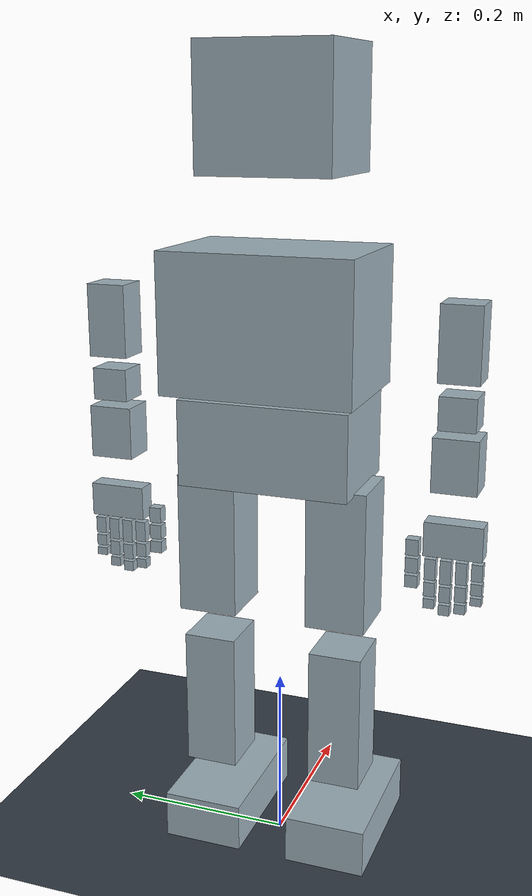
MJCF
<mujoco model="Irona_914_dynamics_check"><compiler angle="radian" inertiafromgeom="false" balanceinertia="false" /><option timestep="0.001" gravity="0 0 -9.81" integrator="implicitfast" iterations="100" tolerance="1e-10" /><worldbody><geom name="floor" type="plane" size="10 10 .1" friction=".8 .01 .001" rgba=".2 .23 .27 1" /><light pos="2 -2 3" dir="-1 1 -2" directional="true" /><camera name="overview" pos="1.6 -2 1.1" xyaxes=".78 .625 0 -.13 .16 .976" /><body name="pelvis" pos="0 0 0.48"><freejoint name="floating_base" /><inertial pos="0 0 0.01" mass="2.0" diaginertia="0.00752083333 0.00410833333 0.00862083333" /><geom name="pelvis_collision" type="box" pos="0 0 0.01" size="0.0625 0.095 0.0475" friction=".8 .01 .001" rgba=".62 .69 .73 1" condim="4" solref=".006 1" solimp=".95 .99 .001" /><body name="waist_yaw_link" pos="0 0 0.055"><joint name="waist_yaw" type="hinge" axis="0 0 1" range="-0.785398163 0.785398163" damping="0" armature="0" /><inertial pos="0 0 0" mass="0.12" diaginertia="2.225e-05 2.225e-05 3.2e-05" /><body name="torso" pos="0 0 0.01"><joint name="waist_pitch" type="hinge" axis="0 1 0" range="-0.34906585 0.436332313" damping="0" armature="0" /><inertial pos="-0.012 0 0.076" mass="3.6" diaginertia="0.01998 0.0130575 0.0195375" /><geom name="torso_collision" type="box" pos="-0.012 0 0.076" size="0.0725 0.105 0.075" friction=".8 .01 .001" rgba=".62 .69 .73 1" condim="4" solref=".006 1" solimp=".95 .99 .001" /><body name="neck_yaw_link" pos="0 0 0.199"><joint name="neck_yaw" type="hinge" axis="0 0 1" range="-1.3962634 1.3962634" damping="0" armature="0" /><inertial pos="0 0 0" mass="0.1" diaginertia="1.54166667e-05 1.54166667e-05 2.04166667e-05" /><body name="head" pos="0 0 0.02"><joint name="neck_pitch" type="hinge" axis="0 1 0" range="-0.523598776 0.610865238" damping="0" armature="0" /><inertial pos="0.01 0 0.069" mass="0.91" diaginertia="0.00287597917 0.00260290333 0.00291571583" /><geom name="head_collision" type="box" pos="0.01 0 0.069" size="0.066 0.0725 0.065" friction=".8 .01 .001" rgba=".62 .69 .73 1" condim="4" solref=".006 1" solimp=".95 .99 .001" /></body></body><body name="left_shoulder_pitch_link" pos="0 0.172 0.158"><joint name="left_shoulder_pitch" type="hinge" axis="0 1 0" range="-1.91986218 1.65806279" damping="0" armature="0" /><inertial pos="0 0 -0.012" mass="0.2" diaginertia="6.83333333e-05 7.10666667e-05 5.60666667e-05" /><body name="left_shoulder_roll_link" pos="0 0.021 -0.023"><joint name="left_shoulder_roll" type="hinge" axis="1 0 0" range="-1.3962634 1.3962634" damping="0" armature="0" /><inertial pos="0 0 -0.006" mass="0.2" diaginertia="4.81333333e-05 4.94166667e-05 4.94166667e-05" /><body name="left_upper_arm" pos="0 0.004 -0.023"><joint name="left_shoulder_yaw" type="hinge" axis="0 0 1" range="-1.74532925 1.74532925" damping="0" armature="0" /><inertial pos="0 0 -0.049" mass="0.33" diaginertia="0.0002336675 0.0002244275 9.724e-05" /><geom name="left_upper_arm_collision" type="box" pos="0 0 -0.049" size="0.02 0.022 0.0405" friction=".8 .01 .001" rgba=".62 .69 .73 1" condim="4" solref=".006 1" solimp=".95 .99 .001" /><body name="left_forearm" pos="0 0 -0.104"><joint name="left_elbow" type="hinge" axis="0 1 0" range="-2.35619449 0" damping="0" armature="0" /><inertial pos="0 0 -0.017" mass="0.22" diaginertia="5.30933333e-05 4.88583333e-05 5.44316667e-05" /><geom name="left_forearm_collision" type="box" pos="0 0 -0.017" size="0.0185 0.02 0.018" friction=".8 .01 .001" rgba=".62 .69 .73 1" condim="4" solref=".006 1" solimp=".95 .99 .001" /><body name="left_forearm_roll_link" pos="0 0 -0.037"><joint name="left_forearm_roll" type="hinge" axis="0 0 1" range="-1.91986218 1.91986218" damping="0" armature="0" /><inertial pos="0 0 -0.035" mass="0.24" diaginertia="0.00011764 0.00010324 8.164e-05" /><geom name="left_forearm_roll_link_collision" type="box" pos="0 0 -0.035" size="0.0205 0.0245 0.0295" friction=".8 .01 .001" rgba=".62 .69 .73 1" condim="4" solref=".006 1" solimp=".95 .99 .001" /><body name="left_wrist_pitch_link" pos="0 0 -0.079"><joint name="left_wrist_pitch" type="hinge" axis="0 1 0" range="-1.13446401 1.13446401" damping="0" armature="0" /><inertial pos="0 0 -0.008" mass="0.1" diaginertia="1.48416667e-05 1.37416667e-05 1.81666667e-05" /><body name="left_hand" pos="0 0 -0.02"><joint name="left_wrist_roll" type="hinge" axis="1 0 0" range="-0.610865238 0.610865238" damping="0" armature="0" /><inertial pos="0 0 -0.021" mass="0.16" diaginertia="7.38666667e-05 2.63066667e-05 6.16666667e-05" /><geom name="left_hand_collision" type="box" pos="0 0 -0.021" size="0.0115 0.032 0.019" friction=".8 .01 .001" rgba=".62 .69 .73 1" condim="4" solref=".006 1" solimp=".95 .99 .001" /><body name="left_index_mcp_link" pos="0 -0.025 -0.044"><joint name="left_index_mcp" type="hinge" axis="0 1 0" range="-1.48352986 0.174532925" damping="0" armature="0" /><inertial pos="0 0 -0.0135" mass="0.009" diaginertia="5.4e-07 5.2275e-07 1.9875e-07" /><geom name="left_index_mcp_link_collision" type="box" pos="0 0 -0.0135" size="0.0055 0.006 0.012" friction=".8 .01 .001" rgba=".62 .69 .73 1" condim="4" solref=".006 1" solimp=".95 .99 .001" /><body name="left_index_pip_link" pos="0 0 -0.027"><joint name="left_index_pip" type="hinge" axis="0 1 0" range="-1.74532925 0" damping="0" armature="0" /><inertial pos="0 0 -0.0095" mass="0.006" diaginertia="2e-07 1.885e-07 1.325e-07" /><geom name="left_index_pip_link_collision" type="box" pos="0 0 -0.0095" size="0.0055 0.006 0.008" friction=".8 .01 .001" rgba=".62 .69 .73 1" condim="4" solref=".006 1" solimp=".95 .99 .001" /><body name="left_index_dip_link" pos="0 0 -0.019"><joint name="left_index_dip" type="hinge" axis="0 1 0" range="-1.30899694 0" damping="0" armature="0" /><inertial pos="0 0 -0.007" mass="0.004" diaginertia="8.83333333e-08 8.06666667e-08 8.83333333e-08" /><geom name="left_index_dip_link_collision" type="box" pos="0 0 -0.007" size="0.0055 0.006 0.0055" friction=".8 .01 .001" rgba=".62 .69 .73 1" condim="4" solref=".006 1" solimp=".95 .99 .001" /></body></body></body><body name="left_middle_mcp_link" pos="0 -0.008 -0.044"><joint name="left_middle_mcp" type="hinge" axis="0 1 0" range="-1.48352986 0.174532925" damping="0" armature="0" /><inertial pos="0 0 -0.015" mass="0.009" diaginertia="6.5475e-07 6.375e-07 1.9875e-07" /><geom name="left_middle_mcp_link_collision" type="box" pos="0 0 -0.015" size="0.0055 0.006 0.0135" friction=".8 .01 .001" rgba=".62 .69 .73 1" condim="4" solref=".006 1" solimp=".95 .99 .001" /><body name="left_middle_pip_link" pos="0 0 -0.03"><joint name="left_middle_pip" type="hinge" axis="0 1 0" range="-1.74532925 0" damping="0" armature="0" /><inertial pos="0 0 -0.0105" mass="0.006" diaginertia="2.34e-07 2.225e-07 1.325e-07" /><geom name="left_middle_pip_link_collision" type="box" pos="0 0 -0.0105" size="0.0055 0.006 0.009" friction=".8 .01 .001" rgba=".62 .69 .73 1" condim="4" solref=".006 1" solimp=".95 .99 .001" /><body name="left_middle_dip_link" pos="0 0 -0.021"><joint name="left_middle_dip" type="hinge" axis="0 1 0" range="-1.30899694 0" damping="0" armature="0" /><inertial pos="0 0 -0.0075" mass="0.004" diaginertia="9.6e-08 8.83333333e-08 8.83333333e-08" /><geom name="left_middle_dip_link_collision" type="box" pos="0 0 -0.0075" size="0.0055 0.006 0.006" friction=".8 .01 .001" rgba=".62 .69 .73 1" condim="4" solref=".006 1" solimp=".95 .99 .001" /></body></body></body><body name="left_ring_mcp_link" pos="0 0.009 -0.044"><joint name="left_ring_mcp" type="hinge" axis="0 1 0" range="-1.48352986 0.174532925" damping="0" armature="0" /><inertial pos="0 0 -0.014" mass="0.009" diaginertia="5.7675e-07 5.595e-07 1.9875e-07" /><geom name="left_ring_mcp_link_collision" type="box" pos="0 0 -0.014" size="0.0055 0.006 0.0125" friction=".8 .01 .001" rgba=".62 .69 .73 1" condim="4" solref=".006 1" solimp=".95 .99 .001" /><body name="left_ring_pip_link" pos="0 0 -0.028"><joint name="left_ring_pip" type="hinge" axis="0 1 0" range="-1.74532925 0" damping="0" armature="0" /><inertial pos="0 0 -0.01" mass="0.006" diaginertia="2.165e-07 2.05e-07 1.325e-07" /><geom name="left_ring_pip_link_collision" type="box" pos="0 0 -0.01" size="0.0055 0.006 0.0085" friction=".8 .01 .001" rgba=".62 .69 .73 1" condim="4" solref=".006 1" solimp=".95 .99 .001" /><body name="left_ring_dip_link" pos="0 0 -0.02"><joint name="left_ring_dip" type="hinge" axis="0 1 0" range="-1.30899694 0" damping="0" armature="0" /><inertial pos="0 0 -0.007" mass="0.004" diaginertia="8.83333333e-08 8.06666667e-08 8.83333333e-08" /><geom name="left_ring_dip_link_collision" type="box" pos="0 0 -0.007" size="0.0055 0.006 0.0055" friction=".8 .01 .001" rgba=".62 .69 .73 1" condim="4" solref=".006 1" solimp=".95 .99 .001" /></body></body></body><body name="left_little_mcp_link" pos="0 0.026 -0.044"><joint name="left_little_mcp" type="hinge" axis="0 1 0" range="-1.48352986 0.174532925" damping="0" armature="0" /><inertial pos="0 0 -0.011" mass="0.009" diaginertia="3.7875e-07 3.615e-07 1.9875e-07" /><geom name="left_little_mcp_link_collision" type="box" pos="0 0 -0.011" size="0.0055 0.006 0.0095" friction=".8 .01 .001" rgba=".62 .69 .73 1" condim="4" solref=".006 1" solimp=".95 .99 .001" /><body name="left_little_pip_link" pos="0 0 -0.022"><joint name="left_little_pip" type="hinge" axis="0 1 0" range="-1.74532925 0" damping="0" armature="0" /><inertial pos="0 0 -0.008" mass="0.006" diaginertia="1.565e-07 1.45e-07 1.325e-07" /><geom name="left_little_pip_link_collision" type="box" pos="0 0 -0.008" size="0.0055 0.006 0.0065" friction=".8 .01 .001" rgba=".62 .69 .73 1" condim="4" solref=".006 1" solimp=".95 .99 .001" /><body name="left_little_dip_link" pos="0 0 -0.016"><joint name="left_little_dip" type="hinge" axis="0 1 0" range="-1.30899694 0" damping="0" armature="0" /><inertial pos="0 0 -0.006" mass="0.004" diaginertia="7.5e-08 6.73333333e-08 8.83333333e-08" /><geom name="left_little_dip_link_collision" type="box" pos="0 0 -0.006" size="0.0055 0.006 0.0045" friction=".8 .01 .001" rgba=".62 .69 .73 1" condim="4" solref=".006 1" solimp=".95 .99 .001" /></body></body></body><body name="left_thumb_cmc_link" pos="0 -0.045 -0.021"><joint name="left_thumb_opposition" type="hinge" axis="0 0 1" range="-1.13446401 1.13446401" damping="0" armature="0" /><inertial pos="0 0 0" mass="0.009" diaginertia="2.955e-07 3.1875e-07 3.6075e-07" /><body name="left_thumb_spread_link" pos="0 0 -0.003"><joint name="left_thumb_spread" type="hinge" axis="1 0 0" range="-0.698131701 0.698131701" damping="0" armature="0" /><inertial pos="0 0 -0.0105" mass="0.01" diaginertia="4.33333333e-07 4.10833333e-07 3.04166667e-07" /><geom name="left_thumb_spread_link_collision" type="box" pos="0 0 -0.0105" size="0.0065 0.007 0.009" friction=".8 .01 .001" rgba=".62 .69 .73 1" condim="4" solref=".006 1" solimp=".95 .99 .001" /><body name="left_thumb_mcp_link" pos="0 0 -0.021"><joint name="left_thumb_mcp" type="hinge" axis="0 1 0" range="-1.30899694 0.174532925" damping="0" armature="0" /><inertial pos="0 0 -0.01" mass="0.008" diaginertia="3.23333333e-07 3.05333333e-07 2.43333333e-07" /><geom name="left_thumb_mcp_link_collision" type="box" pos="0 0 -0.01" size="0.0065 0.007 0.0085" friction=".8 .01 .001" rgba=".62 .69 .73 1" condim="4" solref=".006 1" solimp=".95 .99 .001" /><body name="left_thumb_ip_link" pos="0 0 -0.02"><joint name="left_thumb_ip" type="hinge" axis="0 1 0" range="-1.3962634 0" damping="0" armature="0" /><inertial pos="0 0 -0.0085" mass="0.005" diaginertia="1.63333333e-07 1.52083333e-07 1.52083333e-07" /><geom name="left_thumb_ip_link_collision" type="box" pos="0 0 -0.0085" size="0.0065 0.007 0.007" friction=".8 .01 .001" rgba=".62 .69 .73 1" condim="4" solref=".006 1" solimp=".95 .99 .001" /></body></body></body></body></body></body></body></body></body></body></body><body name="right_shoulder_pitch_link" pos="0 -0.172 0.158"><joint name="right_shoulder_pitch" type="hinge" axis="0 1 0" range="-1.91986218 1.65806279" damping="0" armature="0" /><inertial pos="0 0 -0.012" mass="0.2" diaginertia="6.83333333e-05 7.10666667e-05 5.60666667e-05" /><body name="right_shoulder_roll_link" pos="0 -0.021 -0.023"><joint name="right_shoulder_roll" type="hinge" axis="1 0 0" range="-1.3962634 1.3962634" damping="0" armature="0" /><inertial pos="0 0 -0.006" mass="0.2" diaginertia="4.81333333e-05 4.94166667e-05 4.94166667e-05" /><body name="right_upper_arm" pos="0 -0.004 -0.023"><joint name="right_shoulder_yaw" type="hinge" axis="0 0 1" range="-1.74532925 1.74532925" damping="0" armature="0" /><inertial pos="0 0 -0.049" mass="0.33" diaginertia="0.0002336675 0.0002244275 9.724e-05" /><geom name="right_upper_arm_collision" type="box" pos="0 0 -0.049" size="0.02 0.022 0.0405" friction=".8 .01 .001" rgba=".62 .69 .73 1" condim="4" solref=".006 1" solimp=".95 .99 .001" /><body name="right_forearm" pos="0 0 -0.104"><joint name="right_elbow" type="hinge" axis="0 1 0" range="-2.35619449 0" damping="0" armature="0" /><inertial pos="0 0 -0.017" mass="0.22" diaginertia="5.30933333e-05 4.88583333e-05 5.44316667e-05" /><geom name="right_forearm_collision" type="box" pos="0 0 -0.017" size="0.0185 0.02 0.018" friction=".8 .01 .001" rgba=".62 .69 .73 1" condim="4" solref=".006 1" solimp=".95 .99 .001" /><body name="right_forearm_roll_link" pos="0 0 -0.037"><joint name="right_forearm_roll" type="hinge" axis="0 0 1" range="-1.91986218 1.91986218" damping="0" armature="0" /><inertial pos="0 0 -0.035" mass="0.24" diaginertia="0.00011764 0.00010324 8.164e-05" /><geom name="right_forearm_roll_link_collision" type="box" pos="0 0 -0.035" size="0.0205 0.0245 0.0295" friction=".8 .01 .001" rgba=".62 .69 .73 1" condim="4" solref=".006 1" solimp=".95 .99 .001" /><body name="right_wrist_pitch_link" pos="0 0 -0.079"><joint name="right_wrist_pitch" type="hinge" axis="0 1 0" range="-1.13446401 1.13446401" damping="0" armature="0" /><inertial pos="0 0 -0.008" mass="0.1" diaginertia="1.48416667e-05 1.37416667e-05 1.81666667e-05" /><body name="right_hand" pos="0 0 -0.02"><joint name="right_wrist_roll" type="hinge" axis="1 0 0" range="-0.610865238 0.610865238" damping="0" armature="0" /><inertial pos="0 0 -0.021" mass="0.16" diaginertia="7.38666667e-05 2.63066667e-05 6.16666667e-05" /><geom name="right_hand_collision" type="box" pos="0 0 -0.021" size="0.0115 0.032 0.019" friction=".8 .01 .001" rgba=".62 .69 .73 1" condim="4" solref=".006 1" solimp=".95 .99 .001" /><body name="right_index_mcp_link" pos="0 0.025 -0.044"><joint name="right_index_mcp" type="hinge" axis="0 1 0" range="-1.48352986 0.174532925" damping="0" armature="0" /><inertial pos="0 0 -0.0135" mass="0.009" diaginertia="5.4e-07 5.2275e-07 1.9875e-07" /><geom name="right_index_mcp_link_collision" type="box" pos="0 0 -0.0135" size="0.0055 0.006 0.012" friction=".8 .01 .001" rgba=".62 .69 .73 1" condim="4" solref=".006 1" solimp=".95 .99 .001" /><body name="right_index_pip_link" pos="0 0 -0.027"><joint name="right_index_pip" type="hinge" axis="0 1 0" range="-1.74532925 0" damping="0" armature="0" /><inertial pos="0 0 -0.0095" mass="0.006" diaginertia="2e-07 1.885e-07 1.325e-07" /><geom name="right_index_pip_link_collision" type="box" pos="0 0 -0.0095" size="0.0055 0.006 0.008" friction=".8 .01 .001" rgba=".62 .69 .73 1" condim="4" solref=".006 1" solimp=".95 .99 .001" /><body name="right_index_dip_link" pos="0 0 -0.019"><joint name="right_index_dip" type="hinge" axis="0 1 0" range="-1.30899694 0" damping="0" armature="0" /><inertial pos="0 0 -0.007" mass="0.004" diaginertia="8.83333333e-08 8.06666667e-08 8.83333333e-08" /><geom name="right_index_dip_link_collision" type="box" pos="0 0 -0.007" size="0.0055 0.006 0.0055" friction=".8 .01 .001" rgba=".62 .69 .73 1" condim="4" solref=".006 1" solimp=".95 .99 .001" /></body></body></body><body name="right_middle_mcp_link" pos="0 0.008 -0.044"><joint name="right_middle_mcp" type="hinge" axis="0 1 0" range="-1.48352986 0.174532925" damping="0" armature="0" /><inertial pos="0 0 -0.015" mass="0.009" diaginertia="6.5475e-07 6.375e-07 1.9875e-07" /><geom name="right_middle_mcp_link_collision" type="box" pos="0 0 -0.015" size="0.0055 0.006 0.0135" friction=".8 .01 .001" rgba=".62 .69 .73 1" condim="4" solref=".006 1" solimp=".95 .99 .001" /><body name="right_middle_pip_link" pos="0 0 -0.03"><joint name="right_middle_pip" type="hinge" axis="0 1 0" range="-1.74532925 0" damping="0" armature="0" /><inertial pos="0 0 -0.0105" mass="0.006" diaginertia="2.34e-07 2.225e-07 1.325e-07" /><geom name="right_middle_pip_link_collision" type="box" pos="0 0 -0.0105" size="0.0055 0.006 0.009" friction=".8 .01 .001" rgba=".62 .69 .73 1" condim="4" solref=".006 1" solimp=".95 .99 .001" /><body name="right_middle_dip_link" pos="0 0 -0.021"><joint name="right_middle_dip" type="hinge" axis="0 1 0" range="-1.30899694 0" damping="0" armature="0" /><inertial pos="0 0 -0.0075" mass="0.004" diaginertia="9.6e-08 8.83333333e-08 8.83333333e-08" /><geom name="right_middle_dip_link_collision" type="box" pos="0 0 -0.0075" size="0.0055 0.006 0.006" friction=".8 .01 .001" rgba=".62 .69 .73 1" condim="4" solref=".006 1" solimp=".95 .99 .001" /></body></body></body><body name="right_ring_mcp_link" pos="0 -0.009 -0.044"><joint name="right_ring_mcp" type="hinge" axis="0 1 0" range="-1.48352986 0.174532925" damping="0" armature="0" /><inertial pos="0 0 -0.014" mass="0.009" diaginertia="5.7675e-07 5.595e-07 1.9875e-07" /><geom name="right_ring_mcp_link_collision" type="box" pos="0 0 -0.014" size="0.0055 0.006 0.0125" friction=".8 .01 .001" rgba=".62 .69 .73 1" condim="4" solref=".006 1" solimp=".95 .99 .001" /><body name="right_ring_pip_link" pos="0 0 -0.028"><joint name="right_ring_pip" type="hinge" axis="0 1 0" range="-1.74532925 0" damping="0" armature="0" /><inertial pos="0 0 -0.01" mass="0.006" diaginertia="2.165e-07 2.05e-07 1.325e-07" /><geom name="right_ring_pip_link_collision" type="box" pos="0 0 -0.01" size="0.0055 0.006 0.0085" friction=".8 .01 .001" rgba=".62 .69 .73 1" condim="4" solref=".006 1" solimp=".95 .99 .001" /><body name="right_ring_dip_link" pos="0 0 -0.02"><joint name="right_ring_dip" type="hinge" axis="0 1 0" range="-1.30899694 0" damping="0" armature="0" /><inertial pos="0 0 -0.007" mass="0.004" diaginertia="8.83333333e-08 8.06666667e-08 8.83333333e-08" /><geom name="right_ring_dip_link_collision" type="box" pos="0 0 -0.007" size="0.0055 0.006 0.0055" friction=".8 .01 .001" rgba=".62 .69 .73 1" condim="4" solref=".006 1" solimp=".95 .99 .001" /></body></body></body><body name="right_little_mcp_link" pos="0 -0.026 -0.044"><joint name="right_little_mcp" type="hinge" axis="0 1 0" range="-1.48352986 0.174532925" damping="0" armature="0" /><inertial pos="0 0 -0.011" mass="0.009" diaginertia="3.7875e-07 3.615e-07 1.9875e-07" /><geom name="right_little_mcp_link_collision" type="box" pos="0 0 -0.011" size="0.0055 0.006 0.0095" friction=".8 .01 .001" rgba=".62 .69 .73 1" condim="4" solref=".006 1" solimp=".95 .99 .001" /><body name="right_little_pip_link" pos="0 0 -0.022"><joint name="right_little_pip" type="hinge" axis="0 1 0" range="-1.74532925 0" damping="0" armature="0" /><inertial pos="0 0 -0.008" mass="0.006" diaginertia="1.565e-07 1.45e-07 1.325e-07" /><geom name="right_little_pip_link_collision" type="box" pos="0 0 -0.008" size="0.0055 0.006 0.0065" friction=".8 .01 .001" rgba=".62 .69 .73 1" condim="4" solref=".006 1" solimp=".95 .99 .001" /><body name="right_little_dip_link" pos="0 0 -0.016"><joint name="right_little_dip" type="hinge" axis="0 1 0" range="-1.30899694 0" damping="0" armature="0" /><inertial pos="0 0 -0.006" mass="0.004" diaginertia="7.5e-08 6.73333333e-08 8.83333333e-08" /><geom name="right_little_dip_link_collision" type="box" pos="0 0 -0.006" size="0.0055 0.006 0.0045" friction=".8 .01 .001" rgba=".62 .69 .73 1" condim="4" solref=".006 1" solimp=".95 .99 .001" /></body></body></body><body name="right_thumb_cmc_link" pos="0 0.045 -0.021"><joint name="right_thumb_opposition" type="hinge" axis="0 0 1" range="-1.13446401 1.13446401" damping="0" armature="0" /><inertial pos="0 0 0" mass="0.009" diaginertia="2.955e-07 3.1875e-07 3.6075e-07" /><body name="right_thumb_spread_link" pos="0 0 -0.003"><joint name="right_thumb_spread" type="hinge" axis="1 0 0" range="-0.698131701 0.698131701" damping="0" armature="0" /><inertial pos="0 0 -0.0105" mass="0.01" diaginertia="4.33333333e-07 4.10833333e-07 3.04166667e-07" /><geom name="right_thumb_spread_link_collision" type="box" pos="0 0 -0.0105" size="0.0065 0.007 0.009" friction=".8 .01 .001" rgba=".62 .69 .73 1" condim="4" solref=".006 1" solimp=".95 .99 .001" /><body name="right_thumb_mcp_link" pos="0 0 -0.021"><joint name="right_thumb_mcp" type="hinge" axis="0 1 0" range="-1.30899694 0.174532925" damping="0" armature="0" /><inertial pos="0 0 -0.01" mass="0.008" diaginertia="3.23333333e-07 3.05333333e-07 2.43333333e-07" /><geom name="right_thumb_mcp_link_collision" type="box" pos="0 0 -0.01" size="0.0065 0.007 0.0085" friction=".8 .01 .001" rgba=".62 .69 .73 1" condim="4" solref=".006 1" solimp=".95 .99 .001" /><body name="right_thumb_ip_link" pos="0 0 -0.02"><joint name="right_thumb_ip" type="hinge" axis="0 1 0" range="-1.3962634 0" damping="0" armature="0" /><inertial pos="0 0 -0.0085" mass="0.005" diaginertia="1.63333333e-07 1.52083333e-07 1.52083333e-07" /><geom name="right_thumb_ip_link_collision" type="box" pos="0 0 -0.0085" size="0.0065 0.007 0.007" friction=".8 .01 .001" rgba=".62 .69 .73 1" condim="4" solref=".006 1" solimp=".95 .99 .001" /></body></body></body></body></body></body></body></body></body></body></body></body></body><body name="left_hip_yaw_link" pos="0 0.075 -0.02"><joint name="left_hip_yaw" type="hinge" axis="0 0 1" range="-0.698131701 0.698131701" damping="0" armature="0" /><inertial pos="0 0 0" mass="0.1" diaginertia="2.04166667e-05 2.04166667e-05 2.04166667e-05" /><body name="left_hip_roll_link" pos="0 0 0"><joint name="left_hip_roll" type="hinge" axis="1 0 0" range="-0.698131701 0.698131701" damping="0" armature="0" /><inertial pos="0 0 0" mass="0.15" diaginertia="3.61e-05 3.61e-05 3.61e-05" /><body name="left_thigh" pos="0 0 0"><joint name="left_hip_pitch" type="hinge" axis="0 1 0" range="-1.83259571 1.04719755" damping="0" armature="0" /><inertial pos="0 0 -0.095" mass="0.95" diaginertia="0.00238204583 0.00243706667 0.000765779167" /><geom name="left_thigh_collision" type="box" pos="0 0 -0.095" size="0.036 0.0335 0.08" friction=".8 .01 .001" rgba=".62 .69 .73 1" condim="4" solref=".006 1" solimp=".95 .99 .001" /><body name="left_shin" pos="0 0 -0.195"><joint name="left_knee" type="hinge" axis="0 1 0" range="0 2.53072742" damping="0" armature="0" /><inertial pos="0 0 -0.094" mass="0.7" diaginertia="0.00170333333 0.00173226667 0.000448933333" /><geom name="left_shin_collision" type="box" pos="0 0 -0.094" size="0.032 0.03 0.08" friction=".8 .01 .001" rgba=".62 .69 .73 1" condim="4" solref=".006 1" solimp=".95 .99 .001" /><body name="left_ankle_pitch_link" pos="0 0 -0.195"><joint name="left_ankle_pitch" type="hinge" axis="0 1 0" range="-1.04719755 0.872664626" damping="0" armature="0" /><inertial pos="0 0 0" mass="0.12" diaginertia="2.45e-05 2.45e-05 2.45e-05" /><body name="left_foot" pos="0 0 0"><joint name="left_ankle_roll" type="hinge" axis="1 0 0" range="-0.610865238 0.610865238" damping="0" armature="0" /><inertial pos="0.0225 0 -0.0425" mass="0.6" diaginertia="0.00057445 0.00159625 0.0018682" /><geom name="left_foot_collision" type="box" pos="0.0225 0 -0.0425" size="0.085 0.046 0.0275" friction=".8 .01 .001" rgba=".62 .69 .73 1" condim="4" solref=".006 1" solimp=".95 .99 .001" /></body></body></body></body></body></body><body name="right_hip_yaw_link" pos="0 -0.075 -0.02"><joint name="right_hip_yaw" type="hinge" axis="0 0 1" range="-0.698131701 0.698131701" damping="0" armature="0" /><inertial pos="0 0 0" mass="0.1" diaginertia="2.04166667e-05 2.04166667e-05 2.04166667e-05" /><body name="right_hip_roll_link" pos="0 0 0"><joint name="right_hip_roll" type="hinge" axis="1 0 0" range="-0.698131701 0.698131701" damping="0" armature="0" /><inertial pos="0 0 0" mass="0.15" diaginertia="3.61e-05 3.61e-05 3.61e-05" /><body name="right_thigh" pos="0 0 0"><joint name="right_hip_pitch" type="hinge" axis="0 1 0" range="-1.83259571 1.04719755" damping="0" armature="0" /><inertial pos="0 0 -0.095" mass="0.95" diaginertia="0.00238204583 0.00243706667 0.000765779167" /><geom name="right_thigh_collision" type="box" pos="0 0 -0.095" size="0.036 0.0335 0.08" friction=".8 .01 .001" rgba=".62 .69 .73 1" condim="4" solref=".006 1" solimp=".95 .99 .001" /><body name="right_shin" pos="0 0 -0.195"><joint name="right_knee" type="hinge" axis="0 1 0" range="0 2.53072742" damping="0" armature="0" /><inertial pos="0 0 -0.094" mass="0.7" diaginertia="0.00170333333 0.00173226667 0.000448933333" /><geom name="right_shin_collision" type="box" pos="0 0 -0.094" size="0.032 0.03 0.08" friction=".8 .01 .001" rgba=".62 .69 .73 1" condim="4" solref=".006 1" solimp=".95 .99 .001" /><body name="right_ankle_pitch_link" pos="0 0 -0.195"><joint name="right_ankle_pitch" type="hinge" axis="0 1 0" range="-1.04719755 0.872664626" damping="0" armature="0" /><inertial pos="0 0 0" mass="0.12" diaginertia="2.45e-05 2.45e-05 2.45e-05" /><body name="right_foot" pos="0 0 0"><joint name="right_ankle_roll" type="hinge" axis="1 0 0" range="-0.610865238 0.610865238" damping="0" armature="0" /><inertial pos="0.0225 0 -0.0425" mass="0.6" diaginertia="0.00057445 0.00159625 0.0018682" /><geom name="right_foot_collision" type="box" pos="0.0225 0 -0.0425" size="0.085 0.046 0.0275" friction=".8 .01 .001" rgba=".62 .69 .73 1" condim="4" solref=".006 1" solimp=".95 .99 .001" /></body></body></body></body></body></body></body></worldbody><actuator><position name="waist_yaw" joint="waist_yaw" gear="1" kp="260" kv="12" ctrllimited="true" ctrlrange="-0.785398163 0.785398163" forcelimited="true" forcerange="-25 25" /><position name="waist_pitch" joint="waist_pitch" gear="1" kp="450" kv="16" ctrllimited="true" ctrlrange="-0.34906585 0.436332313" forcelimited="true" forcerange="-40 40" /><position name="neck_yaw" joint="neck_yaw" gear="1" kp="35" kv="2" ctrllimited="true" ctrlrange="-1.3962634 1.3962634" forcelimited="true" forcerange="-4 4" /><position name="neck_pitch" joint="neck_pitch" gear="1" kp="45" kv="2.5" ctrllimited="true" ctrlrange="-0.523598776 0.610865238" forcelimited="true" forcerange="-5 5" /><position name="left_hip_yaw" joint="left_hip_yaw" gear="1" kp="320" kv="10" ctrllimited="true" ctrlrange="-0.698131701 0.698131701" forcelimited="true" forcerange="-30 30" /><position name="left_hip_roll" joint="left_hip_roll" gear="1" kp="550" kv="16" ctrllimited="true" ctrlrange="-0.698131701 0.698131701" forcelimited="true" forcerange="-55 55" /><position name="left_hip_pitch" joint="left_hip_pitch" gear="1" kp="600" kv="18" ctrllimited="true" ctrlrange="-1.83259571 1.04719755" forcelimited="true" forcerange="-65 65" /><position name="left_knee" joint="left_knee" gear="1" kp="650" kv="18" ctrllimited="true" ctrlrange="0 2.53072742" forcelimited="true" forcerange="-65 65" /><position name="left_ankle_pitch" joint="left_ankle_pitch" gear="1" kp="500" kv="12" ctrllimited="true" ctrlrange="-1.04719755 0.872664626" forcelimited="true" forcerange="-40 40" /><position name="left_ankle_roll" joint="left_ankle_roll" gear="1" kp="500" kv="12" ctrllimited="true" ctrlrange="-0.610865238 0.610865238" forcelimited="true" forcerange="-35 35" /><position name="left_shoulder_pitch" joint="left_shoulder_pitch" gear="1" kp="95" kv="3.5" ctrllimited="true" ctrlrange="-1.91986218 1.65806279" forcelimited="true" forcerange="-4 4" /><position name="left_shoulder_roll" joint="left_shoulder_roll" gear="1" kp="90" kv="3.2" ctrllimited="true" ctrlrange="-1.3962634 1.3962634" forcelimited="true" forcerange="-4 4" /><position name="left_shoulder_yaw" joint="left_shoulder_yaw" gear="1" kp="65" kv="2.2" ctrllimited="true" ctrlrange="-1.74532925 1.74532925" forcelimited="true" forcerange="-3.5 3.5" /><position name="left_elbow" joint="left_elbow" gear="1" kp="55" kv="1.8" ctrllimited="true" ctrlrange="-2.35619449 0" forcelimited="true" forcerange="-1.5 1.5" /><position name="left_forearm_roll" joint="left_forearm_roll" gear="1" kp="40" kv="1.0" ctrllimited="true" ctrlrange="-1.91986218 1.91986218" forcelimited="true" forcerange="-1 1" /><position name="left_wrist_pitch" joint="left_wrist_pitch" gear="1" kp="20" kv="0.6" ctrllimited="true" ctrlrange="-1.13446401 1.13446401" forcelimited="true" forcerange="-0.85 0.85" /><position name="left_wrist_roll" joint="left_wrist_roll" gear="1" kp="15" kv="0.4" ctrllimited="true" ctrlrange="-0.610865238 0.610865238" forcelimited="true" forcerange="-0.65 0.65" /><position name="left_index_mcp" joint="left_index_mcp" gear="1" kp="1.3" kv="0.035" ctrllimited="true" ctrlrange="-1.48352986 0.174532925" forcelimited="true" forcerange="-0.08 0.08" /><position name="left_index_pip" joint="left_index_pip" gear="1" kp="0.8" kv="0.025" ctrllimited="true" ctrlrange="-1.74532925 0" forcelimited="true" forcerange="-0.05 0.05" /><position name="left_index_dip" joint="left_index_dip" gear="1" kp="0.5" kv="0.015" ctrllimited="true" ctrlrange="-1.30899694 0" forcelimited="true" forcerange="-0.025 0.025" /><position name="left_middle_mcp" joint="left_middle_mcp" gear="1" kp="1.3" kv="0.035" ctrllimited="true" ctrlrange="-1.48352986 0.174532925" forcelimited="true" forcerange="-0.08 0.08" /><position name="left_middle_pip" joint="left_middle_pip" gear="1" kp="0.8" kv="0.025" ctrllimited="true" ctrlrange="-1.74532925 0" forcelimited="true" forcerange="-0.05 0.05" /><position name="left_middle_dip" joint="left_middle_dip" gear="1" kp="0.5" kv="0.015" ctrllimited="true" ctrlrange="-1.30899694 0" forcelimited="true" forcerange="-0.025 0.025" /><position name="left_ring_mcp" joint="left_ring_mcp" gear="1" kp="1.3" kv="0.035" ctrllimited="true" ctrlrange="-1.48352986 0.174532925" forcelimited="true" forcerange="-0.08 0.08" /><position name="left_ring_pip" joint="left_ring_pip" gear="1" kp="0.8" kv="0.025" ctrllimited="true" ctrlrange="-1.74532925 0" forcelimited="true" forcerange="-0.05 0.05" /><position name="left_ring_dip" joint="left_ring_dip" gear="1" kp="0.5" kv="0.015" ctrllimited="true" ctrlrange="-1.30899694 0" forcelimited="true" forcerange="-0.025 0.025" /><position name="left_little_mcp" joint="left_little_mcp" gear="1" kp="1.3" kv="0.035" ctrllimited="true" ctrlrange="-1.48352986 0.174532925" forcelimited="true" forcerange="-0.08 0.08" /><position name="left_little_pip" joint="left_little_pip" gear="1" kp="0.8" kv="0.025" ctrllimited="true" ctrlrange="-1.74532925 0" forcelimited="true" forcerange="-0.05 0.05" /><position name="left_little_dip" joint="left_little_dip" gear="1" kp="0.5" kv="0.015" ctrllimited="true" ctrlrange="-1.30899694 0" forcelimited="true" forcerange="-0.025 0.025" /><position name="left_thumb_opposition" joint="left_thumb_opposition" gear="1" kp="1.5" kv="0.04" ctrllimited="true" ctrlrange="-1.13446401 1.13446401" forcelimited="true" forcerange="-0.1 0.1" /><position name="left_thumb_spread" joint="left_thumb_spread" gear="1" kp="1.0" kv="0.03" ctrllimited="true" ctrlrange="-0.698131701 0.698131701" forcelimited="true" forcerange="-0.08 0.08" /><position name="left_thumb_mcp" joint="left_thumb_mcp" gear="1" kp="1.0" kv="0.03" ctrllimited="true" ctrlrange="-1.30899694 0.174532925" forcelimited="true" forcerange="-0.07 0.07" /><position name="left_thumb_ip" joint="left_thumb_ip" gear="1" kp="1.0" kv="0.03" ctrllimited="true" ctrlrange="-1.3962634 0" forcelimited="true" forcerange="-0.04 0.04" /><position name="right_hip_yaw" joint="right_hip_yaw" gear="1" kp="320" kv="10" ctrllimited="true" ctrlrange="-0.698131701 0.698131701" forcelimited="true" forcerange="-30 30" /><position name="right_hip_roll" joint="right_hip_roll" gear="1" kp="550" kv="16" ctrllimited="true" ctrlrange="-0.698131701 0.698131701" forcelimited="true" forcerange="-55 55" /><position name="right_hip_pitch" joint="right_hip_pitch" gear="1" kp="600" kv="18" ctrllimited="true" ctrlrange="-1.83259571 1.04719755" forcelimited="true" forcerange="-65 65" /><position name="right_knee" joint="right_knee" gear="1" kp="650" kv="18" ctrllimited="true" ctrlrange="0 2.53072742" forcelimited="true" forcerange="-65 65" /><position name="right_ankle_pitch" joint="right_ankle_pitch" gear="1" kp="500" kv="12" ctrllimited="true" ctrlrange="-1.04719755 0.872664626" forcelimited="true" forcerange="-40 40" /><position name="right_ankle_roll" joint="right_ankle_roll" gear="1" kp="500" kv="12" ctrllimited="true" ctrlrange="-0.610865238 0.610865238" forcelimited="true" forcerange="-35 35" /><position name="right_shoulder_pitch" joint="right_shoulder_pitch" gear="1" kp="95" kv="3.5" ctrllimited="true" ctrlrange="-1.91986218 1.65806279" forcelimited="true" forcerange="-4 4" /><position name="right_shoulder_roll" joint="right_shoulder_roll" gear="1" kp="90" kv="3.2" ctrllimited="true" ctrlrange="-1.3962634 1.3962634" forcelimited="true" forcerange="-4 4" /><position name="right_shoulder_yaw" joint="right_shoulder_yaw" gear="1" kp="65" kv="2.2" ctrllimited="true" ctrlrange="-1.74532925 1.74532925" forcelimited="true" forcerange="-3.5 3.5" /><position name="right_elbow" joint="right_elbow" gear="1" kp="55" kv="1.8" ctrllimited="true" ctrlrange="-2.35619449 0" forcelimited="true" forcerange="-1.5 1.5" /><position name="right_forearm_roll" joint="right_forearm_roll" gear="1" kp="40" kv="1.0" ctrllimited="true" ctrlrange="-1.91986218 1.91986218" forcelimited="true" forcerange="-1 1" /><position name="right_wrist_pitch" joint="right_wrist_pitch" gear="1" kp="20" kv="0.6" ctrllimited="true" ctrlrange="-1.13446401 1.13446401" forcelimited="true" forcerange="-0.85 0.85" /><position name="right_wrist_roll" joint="right_wrist_roll" gear="1" kp="15" kv="0.4" ctrllimited="true" ctrlrange="-0.610865238 0.610865238" forcelimited="true" forcerange="-0.65 0.65" /><position name="right_index_mcp" joint="right_index_mcp" gear="1" kp="1.3" kv="0.035" ctrllimited="true" ctrlrange="-1.48352986 0.174532925" forcelimited="true" forcerange="-0.08 0.08" /><position name="right_index_pip" joint="right_index_pip" gear="1" kp="0.8" kv="0.025" ctrllimited="true" ctrlrange="-1.74532925 0" forcelimited="true" forcerange="-0.05 0.05" /><position name="right_index_dip" joint="right_index_dip" gear="1" kp="0.5" kv="0.015" ctrllimited="true" ctrlrange="-1.30899694 0" forcelimited="true" forcerange="-0.025 0.025" /><position name="right_middle_mcp" joint="right_middle_mcp" gear="1" kp="1.3" kv="0.035" ctrllimited="true" ctrlrange="-1.48352986 0.174532925" forcelimited="true" forcerange="-0.08 0.08" /><position name="right_middle_pip" joint="right_middle_pip" gear="1" kp="0.8" kv="0.025" ctrllimited="true" ctrlrange="-1.74532925 0" forcelimited="true" forcerange="-0.05 0.05" /><position name="right_middle_dip" joint="right_middle_dip" gear="1" kp="0.5" kv="0.015" ctrllimited="true" ctrlrange="-1.30899694 0" forcelimited="true" forcerange="-0.025 0.025" /><position name="right_ring_mcp" joint="right_ring_mcp" gear="1" kp="1.3" kv="0.035" ctrllimited="true" ctrlrange="-1.48352986 0.174532925" forcelimited="true" forcerange="-0.08 0.08" /><position name="right_ring_pip" joint="right_ring_pip" gear="1" kp="0.8" kv="0.025" ctrllimited="true" ctrlrange="-1.74532925 0" forcelimited="true" forcerange="-0.05 0.05" /><position name="right_ring_dip" joint="right_ring_dip" gear="1" kp="0.5" kv="0.015" ctrllimited="true" ctrlrange="-1.30899694 0" forcelimited="true" forcerange="-0.025 0.025" /><position name="right_little_mcp" joint="right_little_mcp" gear="1" kp="1.3" kv="0.035" ctrllimited="true" ctrlrange="-1.48352986 0.174532925" forcelimited="true" forcerange="-0.08 0.08" /><position name="right_little_pip" joint="right_little_pip" gear="1" kp="0.8" kv="0.025" ctrllimited="true" ctrlrange="-1.74532925 0" forcelimited="true" forcerange="-0.05 0.05" /><position name="right_little_dip" joint="right_little_dip" gear="1" kp="0.5" kv="0.015" ctrllimited="true" ctrlrange="-1.30899694 0" forcelimited="true" forcerange="-0.025 0.025" /><position name="right_thumb_opposition" joint="right_thumb_opposition" gear="1" kp="1.5" kv="0.04" ctrllimited="true" ctrlrange="-1.13446401 1.13446401" forcelimited="true" forcerange="-0.1 0.1" /><position name="right_thumb_spread" joint="right_thumb_spread" gear="1" kp="1.0" kv="0.03" ctrllimited="true" ctrlrange="-0.698131701 0.698131701" forcelimited="true" forcerange="-0.08 0.08" /><position name="right_thumb_mcp" joint="right_thumb_mcp" gear="1" kp="1.0" kv="0.03" ctrllimited="true" ctrlrange="-1.30899694 0.174532925" forcelimited="true" forcerange="-0.07 0.07" /><position name="right_thumb_ip" joint="right_thumb_ip" gear="1" kp="1.0" kv="0.03" ctrllimited="true" ctrlrange="-1.3962634 0" forcelimited="true" forcerange="-0.04 0.04" /></actuator><contact><exclude body1="pelvis" body2="right_hip_roll_link" /><exclude body1="pelvis" body2="waist_yaw_link" /><exclude body1="pelvis" body2="right_hip_yaw_link" /><exclude body1="pelvis" body2="right_thigh" /><exclude body1="pelvis" body2="torso" /><exclude body1="pelvis" body2="right_shoulder_pitch_link" /><exclude body1="torso" body2="waist_yaw_link" /><exclude body1="neck_yaw_link" body2="waist_yaw_link" /><exclude body1="neck_yaw_link" body2="right_shoulder_roll_link" /><exclude body1="neck_yaw_link" body2="torso" /><exclude body1="neck_yaw_link" body2="right_shoulder_pitch_link" /><exclude body1="neck_yaw_link" body2="pelvis" /><exclude body1="head" body2="waist_yaw_link" /><exclude body1="head" body2="torso" /><exclude body1="head" body2="neck_yaw_link" /><exclude body1="head" body2="right_shoulder_pitch_link" /><exclude body1="head" body2="left_shoulder_pitch_link" /><exclude body1="left_hip_yaw_link" body2="right_hip_roll_link" /><exclude body1="left_hip_yaw_link" body2="waist_yaw_link" /><exclude body1="left_hip_yaw_link" body2="right_hip_yaw_link" /><exclude body1="left_hip_yaw_link" body2="left_shin" /><exclude body1="left_hip_yaw_link" body2="torso" /><exclude body1="left_hip_yaw_link" body2="left_thigh" /><exclude body1="left_hip_yaw_link" body2="pelvis" /><exclude body1="left_hip_roll_link" body2="waist_yaw_link" /><exclude body1="left_hip_roll_link" body2="left_shin" /><exclude body1="left_hip_roll_link" body2="right_hip_yaw_link" /><exclude body1="left_hip_roll_link" body2="left_thigh" /><exclude body1="left_hip_roll_link" body2="left_hip_yaw_link" /><exclude body1="left_hip_roll_link" body2="pelvis" /><exclude body1="left_thigh" body2="pelvis" /><exclude body1="left_shin" body2="left_thigh" /><exclude body1="left_ankle_pitch_link" body2="left_hip_roll_link" /><exclude body1="left_ankle_pitch_link" body2="left_shin" /><exclude body1="left_ankle_pitch_link" body2="left_foot" /><exclude body1="left_ankle_pitch_link" body2="left_thigh" /><exclude body1="left_foot" body2="left_shin" /><exclude body1="left_foot" body2="left_thigh" /><exclude body1="left_shoulder_pitch_link" body2="waist_yaw_link" /><exclude body1="left_shoulder_pitch_link" body2="left_upper_arm" /><exclude body1="left_shoulder_pitch_link" body2="right_shoulder_roll_link" /><exclude body1="left_shoulder_pitch_link" body2="torso" /><exclude body1="left_shoulder_pitch_link" body2="neck_yaw_link" /><exclude body1="left_shoulder_pitch_link" body2="left_shoulder_roll_link" /><exclude body1="left_shoulder_pitch_link" body2="right_shoulder_pitch_link" /><exclude body1="left_shoulder_pitch_link" body2="pelvis" /><exclude body1="left_shoulder_roll_link" body2="waist_yaw_link" /><exclude body1="left_shoulder_roll_link" body2="left_upper_arm" /><exclude body1="left_shoulder_roll_link" body2="torso" /><exclude body1="left_shoulder_roll_link" body2="neck_yaw_link" /><exclude body1="left_shoulder_roll_link" body2="right_shoulder_pitch_link" /><exclude body1="left_upper_arm" body2="left_wrist_pitch_link" /><exclude body1="left_upper_arm" body2="torso" /><exclude body1="left_forearm" body2="left_upper_arm" /><exclude body1="left_forearm" body2="left_wrist_pitch_link" /><exclude body1="left_forearm" body2="left_shoulder_pitch_link" /><exclude body1="left_forearm" body2="left_shoulder_roll_link" /><exclude body1="left_forearm" body2="left_hand" /><exclude body1="left_forearm" body2="left_forearm_roll_link" /><exclude body1="left_forearm_roll_link" body2="left_upper_arm" /><exclude body1="left_forearm_roll_link" body2="left_wrist_pitch_link" /><exclude body1="left_forearm_roll_link" body2="left_little_mcp_link" /><exclude body1="left_forearm_roll_link" body2="left_thumb_cmc_link" /><exclude body1="left_forearm_roll_link" body2="left_middle_mcp_link" /><exclude body1="left_forearm_roll_link" body2="left_index_mcp_link" /><exclude body1="left_forearm_roll_link" body2="left_shoulder_roll_link" /><exclude body1="left_forearm_roll_link" body2="left_ring_mcp_link" /><exclude body1="left_forearm_roll_link" body2="left_hand" /><exclude body1="left_hand" body2="left_wrist_pitch_link" /><exclude body1="left_hand" body2="left_thumb_spread_link" /><exclude body1="left_hand" body2="left_middle_mcp_link" /><exclude body1="left_hand" body2="left_little_dip_link" /><exclude body1="left_hand" body2="left_ring_mcp_link" /><exclude body1="left_hand" body2="left_thumb_mcp_link" /><exclude body1="left_hand" body2="left_index_dip_link" /><exclude body1="left_hand" body2="left_little_pip_link" /><exclude body1="left_hand" body2="left_little_mcp_link" /><exclude body1="left_hand" body2="left_ring_dip_link" /><exclude body1="left_hand" body2="left_thumb_cmc_link" /><exclude body1="left_hand" body2="left_index_mcp_link" /><exclude body1="left_hand" body2="left_ring_pip_link" /><exclude body1="left_hand" body2="left_middle_dip_link" /><exclude body1="left_hand" body2="left_middle_pip_link" /><exclude body1="left_hand" body2="left_index_pip_link" /><exclude body1="left_index_mcp_link" body2="left_little_pip_link" /><exclude body1="left_index_mcp_link" body2="left_wrist_pitch_link" /><exclude body1="left_index_mcp_link" body2="left_little_mcp_link" /><exclude body1="left_index_mcp_link" body2="left_thumb_spread_link" /><exclude body1="left_index_mcp_link" body2="left_thumb_cmc_link" /><exclude body1="left_index_mcp_link" body2="left_middle_mcp_link" /><exclude body1="left_index_mcp_link" body2="left_ring_mcp_link" /><exclude body1="left_index_mcp_link" body2="left_ring_pip_link" /><exclude body1="left_index_mcp_link" body2="left_middle_pip_link" /><exclude body1="left_index_mcp_link" body2="left_index_pip_link" /><exclude body1="left_index_pip_link" body2="left_wrist_pitch_link" /><exclude body1="left_index_pip_link" body2="left_little_mcp_link" /><exclude body1="left_index_pip_link" body2="left_thumb_cmc_link" /><exclude body1="left_index_pip_link" body2="left_middle_mcp_link" /><exclude body1="left_index_pip_link" body2="left_ring_mcp_link" /><exclude body1="left_index_dip_link" body2="left_index_pip_link" /><exclude body1="left_index_dip_link" body2="left_index_mcp_link" /><exclude body1="left_middle_mcp_link" body2="left_wrist_pitch_link" /><exclude body1="left_middle_mcp_link" body2="left_thumb_spread_link" /><exclude body1="left_middle_mcp_link" body2="left_thumb_cmc_link" /><exclude body1="left_middle_mcp_link" body2="left_ring_mcp_link" /><exclude body1="left_middle_mcp_link" body2="left_ring_pip_link" /><exclude body1="left_middle_mcp_link" body2="left_middle_pip_link" /><exclude body1="left_middle_pip_link" body2="left_wrist_pitch_link" /><exclude body1="left_middle_pip_link" body2="left_thumb_cmc_link" /><exclude body1="left_middle_pip_link" body2="left_ring_mcp_link" /><exclude body1="left_middle_dip_link" body2="left_middle_pip_link" /><exclude body1="left_middle_dip_link" body2="left_middle_mcp_link" /><exclude body1="left_ring_mcp_link" body2="left_wrist_pitch_link" /><exclude body1="left_ring_mcp_link" body2="left_thumb_spread_link" /><exclude body1="left_ring_mcp_link" body2="left_thumb_cmc_link" /><exclude body1="left_ring_mcp_link" body2="left_ring_pip_link" /><exclude body1="left_ring_pip_link" body2="left_wrist_pitch_link" /><exclude body1="left_ring_pip_link" body2="left_thumb_cmc_link" /><exclude body1="left_ring_dip_link" body2="left_ring_pip_link" /><exclude body1="left_ring_dip_link" body2="left_ring_mcp_link" /><exclude body1="left_little_mcp_link" body2="left_little_pip_link" /><exclude body1="left_little_mcp_link" body2="left_wrist_pitch_link" /><exclude body1="left_little_mcp_link" body2="left_thumb_spread_link" /><exclude body1="left_little_mcp_link" body2="left_thumb_cmc_link" /><exclude body1="left_little_mcp_link" body2="left_middle_mcp_link" /><exclude body1="left_little_mcp_link" body2="left_ring_mcp_link" /><exclude body1="left_little_mcp_link" body2="left_ring_pip_link" /><exclude body1="left_little_mcp_link" body2="left_middle_pip_link" /><exclude body1="left_little_pip_link" body2="left_wrist_pitch_link" /><exclude body1="left_little_pip_link" body2="left_thumb_cmc_link" /><exclude body1="left_little_pip_link" body2="left_middle_mcp_link" /><exclude body1="left_little_pip_link" body2="left_ring_mcp_link" /><exclude body1="left_little_dip_link" body2="left_little_pip_link" /><exclude body1="left_little_dip_link" body2="left_little_mcp_link" /><exclude body1="left_thumb_cmc_link" body2="left_wrist_pitch_link" /><exclude body1="left_thumb_cmc_link" body2="left_thumb_ip_link" /><exclude body1="left_thumb_cmc_link" body2="left_thumb_spread_link" /><exclude body1="left_thumb_cmc_link" body2="left_thumb_mcp_link" /><exclude body1="left_thumb_spread_link" body2="left_wrist_pitch_link" /><exclude body1="left_thumb_mcp_link" body2="left_thumb_spread_link" /><exclude body1="left_thumb_ip_link" body2="left_thumb_mcp_link" /><exclude body1="left_thumb_ip_link" body2="left_thumb_spread_link" /><exclude body1="right_hip_yaw_link" body2="waist_yaw_link" /><exclude body1="right_hip_yaw_link" body2="right_shin" /><exclude body1="right_hip_yaw_link" body2="right_thigh" /><exclude body1="right_hip_yaw_link" body2="torso" /><exclude body1="right_hip_roll_link" body2="right_hip_yaw_link" /><exclude body1="right_hip_roll_link" body2="waist_yaw_link" /><exclude body1="right_hip_roll_link" body2="right_shin" /><exclude body1="right_hip_roll_link" body2="right_thigh" /><exclude body1="right_shin" body2="right_thigh" /><exclude body1="right_ankle_pitch_link" body2="right_hip_roll_link" /><exclude body1="right_ankle_pitch_link" body2="right_thigh" /><exclude body1="right_ankle_pitch_link" body2="right_shin" /><exclude body1="right_ankle_pitch_link" body2="right_foot" /><exclude body1="right_foot" body2="right_thigh" /><exclude body1="right_foot" body2="right_shin" /><exclude body1="right_shoulder_pitch_link" body2="waist_yaw_link" /><exclude body1="right_shoulder_pitch_link" body2="right_shoulder_roll_link" /><exclude body1="right_shoulder_pitch_link" body2="torso" /><exclude body1="right_shoulder_pitch_link" body2="right_upper_arm" /><exclude body1="right_shoulder_roll_link" body2="waist_yaw_link" /><exclude body1="right_shoulder_roll_link" body2="torso" /><exclude body1="right_shoulder_roll_link" body2="right_upper_arm" /><exclude body1="right_upper_arm" body2="right_wrist_pitch_link" /><exclude body1="right_upper_arm" body2="torso" /><exclude body1="right_forearm" body2="right_wrist_pitch_link" /><exclude body1="right_forearm" body2="right_shoulder_roll_link" /><exclude body1="right_forearm" body2="right_upper_arm" /><exclude body1="right_forearm" body2="right_shoulder_pitch_link" /><exclude body1="right_forearm" body2="right_hand" /><exclude body1="right_forearm" body2="right_forearm_roll_link" /><exclude body1="right_forearm_roll_link" body2="right_thumb_cmc_link" /><exclude body1="right_forearm_roll_link" body2="right_wrist_pitch_link" /><exclude body1="right_forearm_roll_link" body2="right_ring_mcp_link" /><exclude body1="right_forearm_roll_link" body2="right_shoulder_roll_link" /><exclude body1="right_forearm_roll_link" body2="right_middle_mcp_link" /><exclude body1="right_forearm_roll_link" body2="right_little_mcp_link" /><exclude body1="right_forearm_roll_link" body2="right_upper_arm" /><exclude body1="right_forearm_roll_link" body2="right_hand" /><exclude body1="right_forearm_roll_link" body2="right_index_mcp_link" /><exclude body1="right_hand" body2="right_thumb_cmc_link" /><exclude body1="right_hand" body2="right_middle_dip_link" /><exclude body1="right_hand" body2="right_ring_mcp_link" /><exclude body1="right_hand" body2="right_wrist_pitch_link" /><exclude body1="right_hand" body2="right_ring_dip_link" /><exclude body1="right_hand" body2="right_middle_mcp_link" /><exclude body1="right_hand" body2="right_index_mcp_link" /><exclude body1="right_hand" body2="right_thumb_spread_link" /><exclude body1="right_hand" body2="right_index_pip_link" /><exclude body1="right_hand" body2="right_thumb_mcp_link" /><exclude body1="right_hand" body2="right_middle_pip_link" /><exclude body1="right_hand" body2="right_little_mcp_link" /><exclude body1="right_hand" body2="right_little_pip_link" /><exclude body1="right_hand" body2="right_ring_pip_link" /><exclude body1="right_hand" body2="right_little_dip_link" /><exclude body1="right_hand" body2="right_index_dip_link" /><exclude body1="right_index_mcp_link" body2="right_thumb_cmc_link" /><exclude body1="right_index_mcp_link" body2="right_ring_mcp_link" /><exclude body1="right_index_mcp_link" body2="right_wrist_pitch_link" /><exclude body1="right_index_mcp_link" body2="right_thumb_spread_link" /><exclude body1="right_index_mcp_link" body2="right_middle_mcp_link" /><exclude body1="right_index_mcp_link" body2="right_index_pip_link" /><exclude body1="right_index_mcp_link" body2="right_middle_pip_link" /><exclude body1="right_index_mcp_link" body2="right_little_mcp_link" /><exclude body1="right_index_mcp_link" body2="right_little_pip_link" /><exclude body1="right_index_mcp_link" body2="right_ring_pip_link" /><exclude body1="right_index_pip_link" body2="right_thumb_cmc_link" /><exclude body1="right_index_pip_link" body2="right_ring_mcp_link" /><exclude body1="right_index_pip_link" body2="right_wrist_pitch_link" /><exclude body1="right_index_pip_link" body2="right_middle_mcp_link" /><exclude body1="right_index_pip_link" body2="right_little_mcp_link" /><exclude body1="right_index_dip_link" body2="right_index_mcp_link" /><exclude body1="right_index_dip_link" body2="right_index_pip_link" /><exclude body1="right_middle_mcp_link" body2="right_thumb_cmc_link" /><exclude body1="right_middle_mcp_link" body2="right_ring_mcp_link" /><exclude body1="right_middle_mcp_link" body2="right_wrist_pitch_link" /><exclude body1="right_middle_mcp_link" body2="right_thumb_spread_link" /><exclude body1="right_middle_mcp_link" body2="right_middle_pip_link" /><exclude body1="right_middle_mcp_link" body2="right_ring_pip_link" /><exclude body1="right_middle_pip_link" body2="right_thumb_cmc_link" /><exclude body1="right_middle_pip_link" body2="right_ring_mcp_link" /><exclude body1="right_middle_pip_link" body2="right_wrist_pitch_link" /><exclude body1="right_middle_dip_link" body2="right_middle_pip_link" /><exclude body1="right_middle_dip_link" body2="right_middle_mcp_link" /><exclude body1="right_ring_mcp_link" body2="right_thumb_cmc_link" /><exclude body1="right_ring_mcp_link" body2="right_wrist_pitch_link" /><exclude body1="right_ring_mcp_link" body2="right_thumb_spread_link" /><exclude body1="right_ring_mcp_link" body2="right_ring_pip_link" /><exclude body1="right_ring_pip_link" body2="right_thumb_cmc_link" /><exclude body1="right_ring_pip_link" body2="right_wrist_pitch_link" /><exclude body1="right_ring_dip_link" body2="right_ring_mcp_link" /><exclude body1="right_ring_dip_link" body2="right_ring_pip_link" /><exclude body1="right_little_mcp_link" body2="right_thumb_cmc_link" /><exclude body1="right_little_mcp_link" body2="right_ring_mcp_link" /><exclude body1="right_little_mcp_link" body2="right_wrist_pitch_link" /><exclude body1="right_little_mcp_link" body2="right_thumb_spread_link" /><exclude body1="right_little_mcp_link" body2="right_middle_mcp_link" /><exclude body1="right_little_mcp_link" body2="right_middle_pip_link" /><exclude body1="right_little_mcp_link" body2="right_little_pip_link" /><exclude body1="right_little_mcp_link" body2="right_ring_pip_link" /><exclude body1="right_little_pip_link" body2="right_thumb_cmc_link" /><exclude body1="right_little_pip_link" body2="right_ring_mcp_link" /><exclude body1="right_little_pip_link" body2="right_wrist_pitch_link" /><exclude body1="right_little_pip_link" body2="right_middle_mcp_link" /><exclude body1="right_little_dip_link" body2="right_little_pip_link" /><exclude body1="right_little_dip_link" body2="right_little_mcp_link" /><exclude body1="right_thumb_cmc_link" body2="right_thumb_spread_link" /><exclude body1="right_thumb_cmc_link" body2="right_wrist_pitch_link" /><exclude body1="right_thumb_cmc_link" body2="right_thumb_ip_link" /><exclude body1="right_thumb_cmc_link" body2="right_thumb_mcp_link" /><exclude body1="right_thumb_spread_link" body2="right_wrist_pitch_link" /><exclude body1="right_thumb_mcp_link" body2="right_thumb_spread_link" /><exclude body1="right_thumb_ip_link" body2="right_thumb_mcp_link" /><exclude body1="right_thumb_ip_link" body2="right_thumb_spread_link" /></contact></mujoco>
